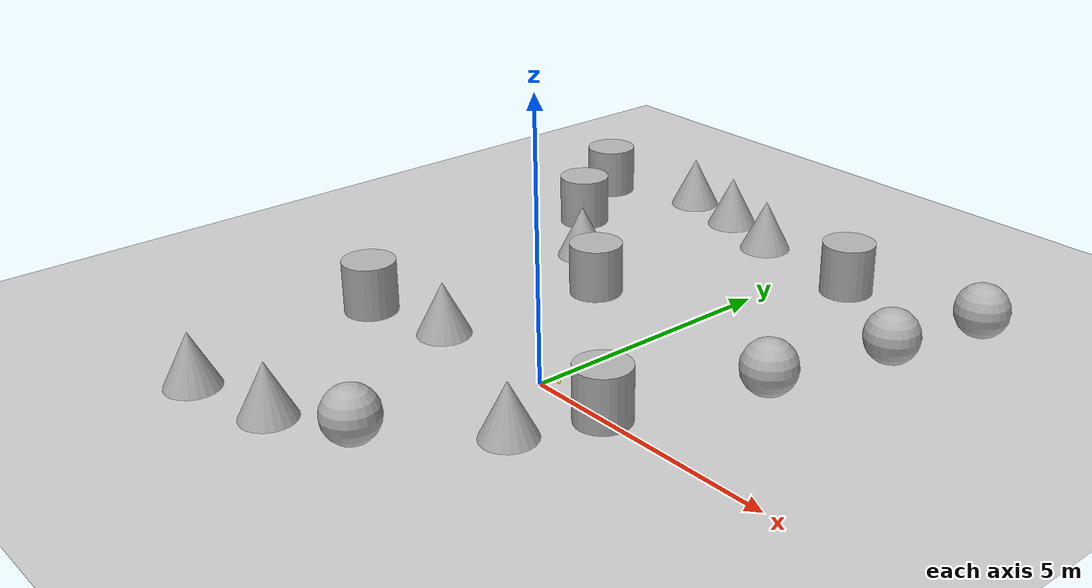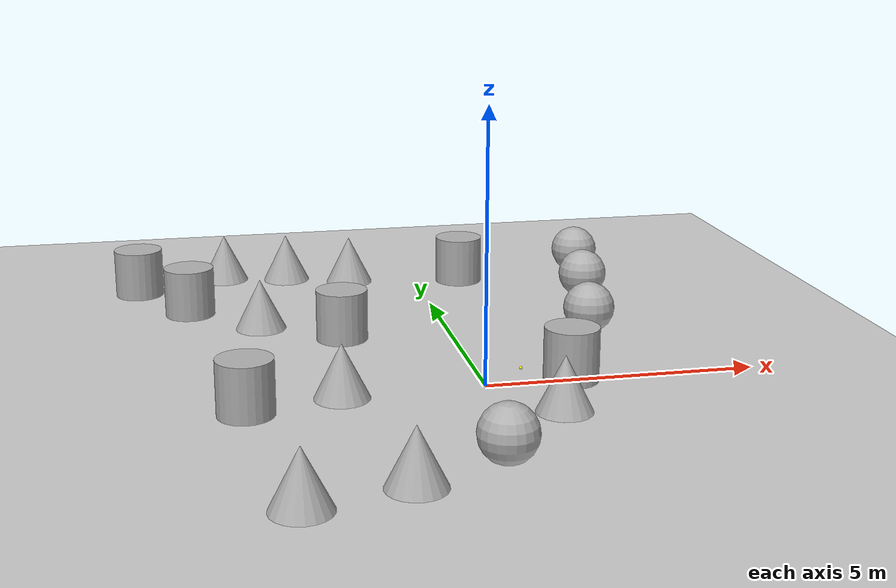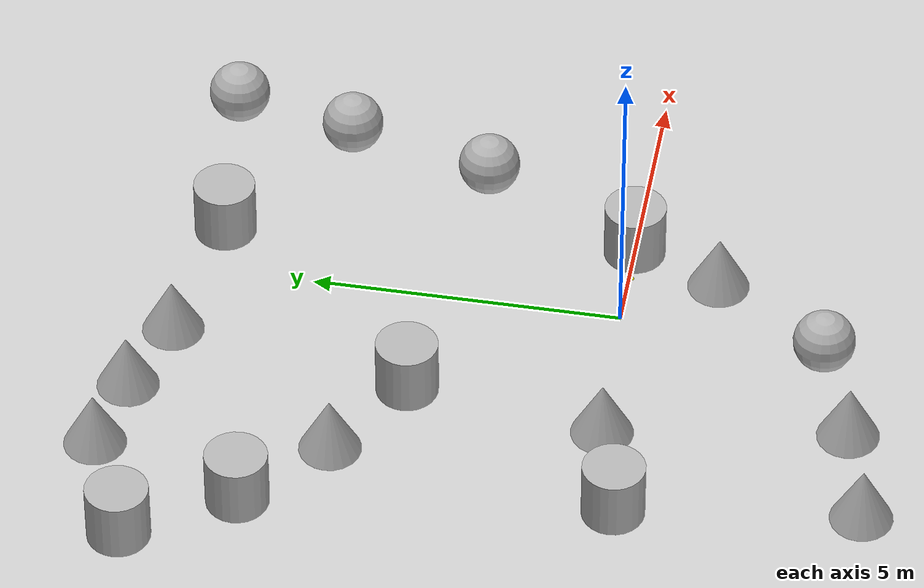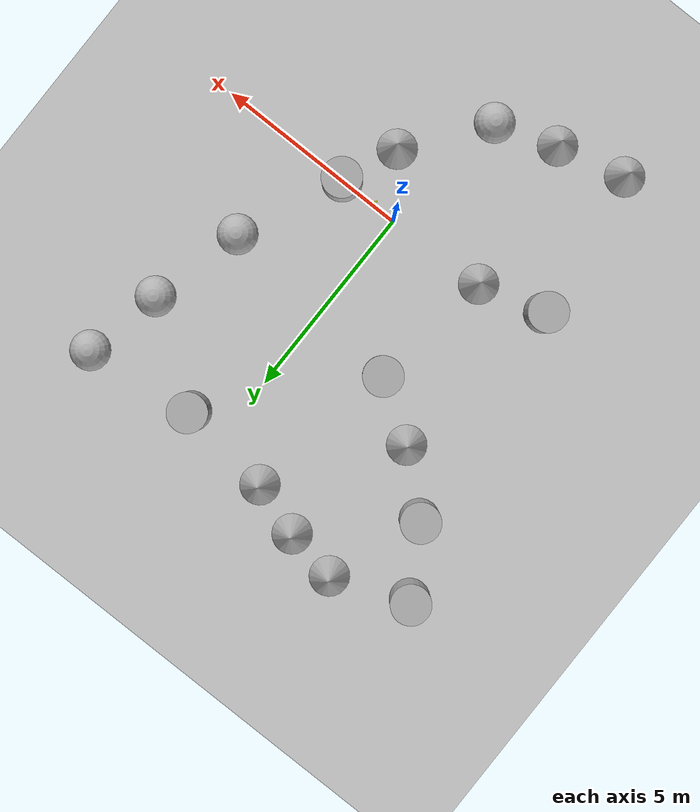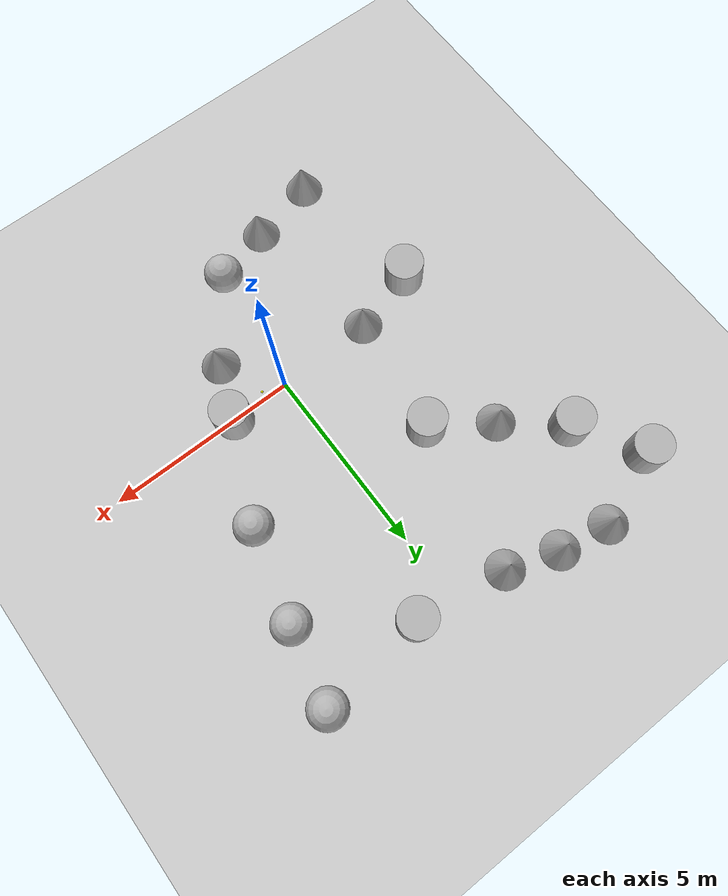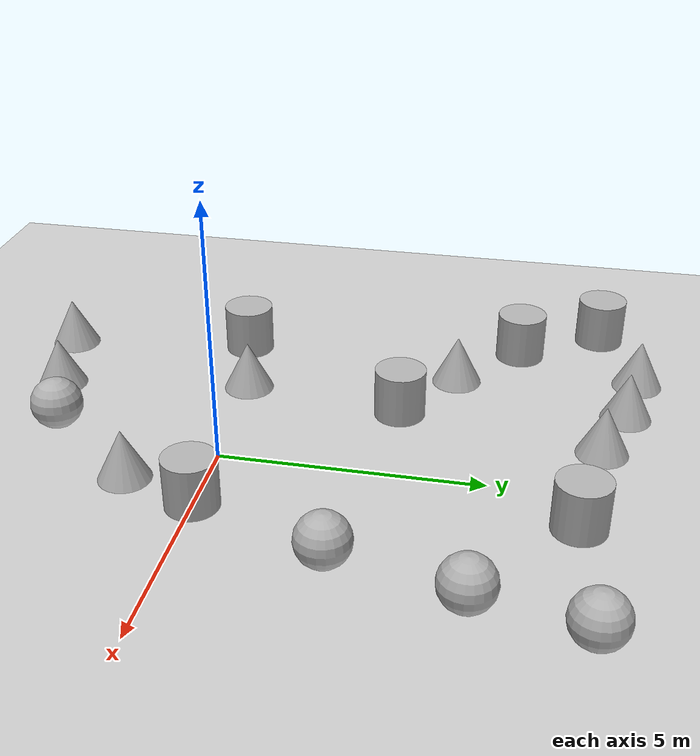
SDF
<?xml version="1.0" ?>
<sdf version='1.10'>
  <world name='vehicle_test'>
    <physics name='1ms' type='ignored'>
      <max_step_size>0.001</max_step_size>
      <real_time_factor>1</real_time_factor>
      <real_time_update_rate>1000</real_time_update_rate>
    </physics>
    <plugin name='gz::sim::systems::Physics' filename='gz-sim-physics-system'/>
    <plugin name='gz::sim::systems::Sensors' filename='gz-sim-sensors-system'>
      <render_engine>ogre2</render_engine>
    </plugin>
    <plugin name='gz::sim::systems::UserCommands' filename='gz-sim-user-commands-system'/>
    <plugin name='gz::sim::systems::SceneBroadcaster' filename='gz-sim-scene-broadcaster-system'/>
    <plugin name='gz::sim::systems::Contact' filename='gz-sim-contact-system'/>
    <gravity>0 0 -9.8000000000000007</gravity>
    <magnetic_field>5.5644999999999998e-06 2.2875799999999999e-05 -4.2388400000000002e-05</magnetic_field>
    <atmosphere type='adiabatic'/>
    <scene>
      <ambient>0.400000006 0.400000006 0.400000006 1</ambient>
      <background>0.699999988 0.699999988 0.699999988 1</background>
      <shadows>true</shadows>
    </scene>
    <gui fullscreen='false'>
      <plugin name='3D View' filename='MinimalScene'>
        <gz-gui>
          <title>3D View</title>
          <property type='bool' key='showTitleBar'>false</property>
          <property type='string' key='state'>docked</property>
        </gz-gui>
        <engine>ogre2</engine>
        <scene>scene</scene>
        <ambient_light>0.4 0.4 0.4</ambient_light>
        <background_color>0.8 0.8 0.8</background_color>
        <camera_pose>-6 0 6 0 0.5 0</camera_pose>
      </plugin>
      <plugin name='Entity context menu' filename='EntityContextMenuPlugin'>
        <gz-gui>
          <property key='state' type='string'>floating</property>
          <property key='width' type='double'>5</property>
          <property key='height' type='double'>5</property>
          <property key='showTitleBar' type='bool'>false</property>
        </gz-gui>
      </plugin>
      <plugin name='Scene Manager' filename='GzSceneManager'>
        <gz-gui>
          <property key='resizable' type='bool'>false</property>
          <property key='width' type='double'>5</property>
          <property key='height' type='double'>5</property>
          <property key='state' type='string'>floating</property>
          <property key='showTitleBar' type='bool'>false</property>
        </gz-gui>
      </plugin>
      <plugin name='Interactive view control' filename='InteractiveViewControl'>
        <gz-gui>
          <property key='resizable' type='bool'>false</property>
          <property key='width' type='double'>5</property>
          <property key='height' type='double'>5</property>
          <property key='state' type='string'>floating</property>
          <property key='showTitleBar' type='bool'>false</property>
        </gz-gui>
      </plugin>
      <plugin name='Camera Tracking' filename='CameraTracking'>
        <gz-gui>
          <property key='resizable' type='bool'>false</property>
          <property key='width' type='double'>5</property>
          <property key='height' type='double'>5</property>
          <property key='state' type='string'>floating</property>
          <property key='showTitleBar' type='bool'>false</property>
        </gz-gui>
      </plugin>
      <plugin name='World control' filename='WorldControl'>
        <gz-gui>
          <title>World control</title>
          <property type='bool' key='showTitleBar'>false</property>
          <property type='bool' key='resizable'>false</property>
          <property type='double' key='height'>72</property>
          <property type='double' key='z'>1</property>
          <property type='string' key='state'>floating</property>
          <anchors target='3D View'>
            <line own='left' target='left'/>
            <line own='bottom' target='bottom'/>
          </anchors>
        </gz-gui>
        <play_pause>true</play_pause>
        <step>true</step>
        <start_paused>true</start_paused>
        <use_event>true</use_event>
      </plugin>
      <plugin name='World stats' filename='WorldStats'>
        <gz-gui>
          <title>World stats</title>
          <property type='bool' key='showTitleBar'>false</property>
          <property type='bool' key='resizable'>false</property>
          <property type='double' key='height'>110</property>
          <property type='double' key='width'>290</property>
          <property type='double' key='z'>1</property>
          <property type='string' key='state'>floating</property>
          <anchors target='3D View'>
            <line own='right' target='right'/>
            <line own='bottom' target='bottom'/>
          </anchors>
        </gz-gui>
        <sim_time>true</sim_time>
        <real_time>true</real_time>
        <real_time_factor>true</real_time_factor>
        <iterations>true</iterations>
      </plugin>
      <plugin name='Image Display' filename='ImageDisplay'>
        <gz-gui>
          <property key='state' type='string'>docked</property>
        </gz-gui>
        <topic>camera</topic>
      </plugin>
      <plugin name='Component inspector' filename='ComponentInspector'>
        <gz-gui>
          <property type='string' key='state'>docked</property>
        </gz-gui>
      </plugin>
      <plugin name='Entity tree' filename='EntityTree'>
        <gz-gui>
          <property type='string' key='state'>docked</property>
        </gz-gui>
      </plugin>
    </gui>
    <model name='ground_plane'>
      <static>true</static>
      <link name='link'>
        <collision name='collision'>
          <geometry>
            <plane>
              <normal>0 0 1</normal>
              <size>100 100</size>
            </plane>
          </geometry>
          <surface>
            <friction>
              <ode/>
            </friction>
            <bounce/>
            <contact/>
          </surface>
        </collision>
        <visual name='visual'>
          <geometry>
            <plane>
              <normal>0 0 1</normal>
              <size>100 100</size>
            </plane>
          </geometry>
          <material>
            <ambient>0.800000012 0.800000012 0.800000012 1</ambient>
            <diffuse>0.800000012 0.800000012 0.800000012 1</diffuse>
            <specular>0.800000012 0.800000012 0.800000012 1</specular>
          </material>
        </visual>
        <pose>0 0 0 0 0 0</pose>
        <inertial>
          <pose>0 0 0 0 0 0</pose>
          <mass>1</mass>
          <inertia>
            <ixx>1</ixx>
            <ixy>0</ixy>
            <ixz>0</ixz>
            <iyy>1</iyy>
            <iyz>0</iyz>
            <izz>1</izz>
          </inertia>
        </inertial>
        <enable_wind>false</enable_wind>
      </link>
      <pose>0 0 0 0 0 0</pose>
      <self_collide>false</self_collide>
    </model>
    <model name='cylinder'>
      <pose>1.5647849126344786 0.010033067511381029 0.49999999649717192 5.9381667025697537e-12 9.1577823688234603e-09 -0.00070522680235406978</pose>
      <link name='cylinder_link'>
        <inertial>
          <inertia>
            <ixx>0.14580000000000001</ixx>
            <ixy>0</ixy>
            <ixz>0</ixz>
            <iyy>0.14580000000000001</iyy>
            <iyz>0</iyz>
            <izz>0.125</izz>
          </inertia>
          <mass>1</mass>
          <pose>0 0 0 0 0 0</pose>
        </inertial>
        <collision name='cylinder_collision'>
          <geometry>
            <cylinder>
              <radius>0.5</radius>
              <length>1</length>
            </cylinder>
          </geometry>
          <surface>
            <friction>
              <ode/>
            </friction>
            <bounce/>
            <contact/>
          </surface>
        </collision>
        <visual name='cylinder_visual'>
          <geometry>
            <cylinder>
              <radius>0.5</radius>
              <length>1</length>
            </cylinder>
          </geometry>
          <material>
            <ambient>0.300000012 0.300000012 0.300000012 1</ambient>
            <diffuse>0.699999988 0.699999988 0.699999988 1</diffuse>
            <specular>1 1 1 1</specular>
          </material>
        </visual>
        <pose>0 0 0 0 0 0</pose>
        <enable_wind>false</enable_wind>
      </link>
      <static>false</static>
      <self_collide>false</self_collide>
    </model>
    <model name='cone'>
      <pose>1.0119903619514858 -1.4393474007977078 0.49999999602630329 2.1493601424994581e-09 -8.0146362352367898e-09 4.5000509187803322e-11</pose>
      <link name='cone_link'>
        <inertial>
          <inertia>
            <ixx>0.074999999999999997</ixx>
            <ixy>0</ixy>
            <ixz>0</ixz>
            <iyy>0.074999999999999997</iyy>
            <iyz>0</iyz>
            <izz>0.074999999999999997</izz>
          </inertia>
          <mass>1</mass>
          <pose>0 0 0 0 0 0</pose>
        </inertial>
        <collision name='cone_collision'>
          <geometry>
            <cone>
              <radius>0.5</radius>
              <length>1</length>
            </cone>
          </geometry>
          <surface>
            <friction>
              <ode/>
            </friction>
            <bounce/>
            <contact/>
          </surface>
        </collision>
        <visual name='cone_visual'>
          <geometry>
            <cone>
              <radius>0.5</radius>
              <length>1</length>
            </cone>
          </geometry>
          <material>
            <ambient>0.300000012 0.300000012 0.300000012 1</ambient>
            <diffuse>0.699999988 0.699999988 0.699999988 1</diffuse>
            <specular>1 1 1 1</specular>
          </material>
        </visual>
        <pose>0 0 0 0 0 0</pose>
        <enable_wind>false</enable_wind>
      </link>
      <static>false</static>
      <self_collide>false</self_collide>
    </model>
    <model name='sphere'>
      <pose>-0.45418939601739705 -3.3253064551731351 0.4999999902000804 0 0 0</pose>
      <link name='sphere_link'>
        <inertial>
          <inertia>
            <ixx>0.10000000000000001</ixx>
            <ixy>0</ixy>
            <ixz>0</ixz>
            <iyy>0.10000000000000001</iyy>
            <iyz>0</iyz>
            <izz>0.10000000000000001</izz>
          </inertia>
          <mass>1</mass>
          <pose>0 0 0 0 0 0</pose>
        </inertial>
        <collision name='sphere_collision'>
          <geometry>
            <sphere>
              <radius>0.5</radius>
            </sphere>
          </geometry>
          <surface>
            <friction>
              <ode/>
            </friction>
            <bounce/>
            <contact/>
          </surface>
        </collision>
        <visual name='sphere_visual'>
          <geometry>
            <sphere>
              <radius>0.5</radius>
            </sphere>
          </geometry>
          <material>
            <ambient>0.300000012 0.300000012 0.300000012 1</ambient>
            <diffuse>0.699999988 0.699999988 0.699999988 1</diffuse>
            <specular>1 1 1 1</specular>
          </material>
        </visual>
        <pose>0 0 0 0 0 0</pose>
        <enable_wind>false</enable_wind>
      </link>
      <static>false</static>
      <self_collide>false</self_collide>
    </model>
    <model name='cone_1'>
      <pose>-1.988375017338802 -3.9166268384729577 0.49999999602630368 2.1500274312625702e-09 -8.0144496998657247e-09 -0.0034618920921257288</pose>
      <link name='cone_link'>
        <inertial>
          <inertia>
            <ixx>0.074999999999999997</ixx>
            <ixy>0</ixy>
            <ixz>0</ixz>
            <iyy>0.074999999999999997</iyy>
            <iyz>0</iyz>
            <izz>0.074999999999999997</izz>
          </inertia>
          <mass>1</mass>
          <pose>0 0 0 0 0 0</pose>
        </inertial>
        <collision name='cone_collision'>
          <geometry>
            <cone>
              <radius>0.5</radius>
              <length>1</length>
            </cone>
          </geometry>
          <surface>
            <friction>
              <ode/>
            </friction>
            <bounce/>
            <contact/>
          </surface>
        </collision>
        <visual name='cone_visual'>
          <geometry>
            <cone>
              <radius>0.5</radius>
              <length>1</length>
            </cone>
          </geometry>
          <material>
            <ambient>0.300000012 0.300000012 0.300000012 1</ambient>
            <diffuse>0.699999988 0.699999988 0.699999988 1</diffuse>
            <specular>1 1 1 1</specular>
          </material>
        </visual>
        <pose>0 0 0 0 0 0</pose>
        <enable_wind>false</enable_wind>
      </link>
      <static>false</static>
      <self_collide>false</self_collide>
    </model>
    <model name='cone_2'>
      <pose>-3.7284737703007584 -4.3418635757443802 0.49999999602630407 2.1483973425995266e-09 -8.0148849395923472e-09 -0.0013240904002517111</pose>
      <link name='cone_link'>
        <inertial>
          <inertia>
            <ixx>0.074999999999999997</ixx>
            <ixy>0</ixy>
            <ixz>0</ixz>
            <iyy>0.074999999999999997</iyy>
            <iyz>0</iyz>
            <izz>0.074999999999999997</izz>
          </inertia>
          <mass>1</mass>
          <pose>0 0 0 0 0 0</pose>
        </inertial>
        <collision name='cone_collision'>
          <geometry>
            <cone>
              <radius>0.5</radius>
              <length>1</length>
            </cone>
          </geometry>
          <surface>
            <friction>
              <ode/>
            </friction>
            <bounce/>
            <contact/>
          </surface>
        </collision>
        <visual name='cone_visual'>
          <geometry>
            <cone>
              <radius>0.5</radius>
              <length>1</length>
            </cone>
          </geometry>
          <material>
            <ambient>0.300000012 0.300000012 0.300000012 1</ambient>
            <diffuse>0.699999988 0.699999988 0.699999988 1</diffuse>
            <specular>1 1 1 1</specular>
          </material>
        </visual>
        <pose>0 0 0 0 0 0</pose>
        <enable_wind>false</enable_wind>
      </link>
      <static>false</static>
      <self_collide>false</self_collide>
    </model>
    <model name='cone_3'>
      <pose>-2.5694164658559759 -0.10154381302845478 0.49999999602630452 2.1467172264714498e-09 -8.0155572575030732e-09 0.00088641058045062053</pose>
      <link name='cone_link'>
        <inertial>
          <inertia>
            <ixx>0.074999999999999997</ixx>
            <ixy>0</ixy>
            <ixz>0</ixz>
            <iyy>0.074999999999999997</iyy>
            <iyz>0</iyz>
            <izz>0.074999999999999997</izz>
          </inertia>
          <mass>1</mass>
          <pose>0 0 0 0 0 0</pose>
        </inertial>
        <collision name='cone_collision'>
          <geometry>
            <cone>
              <radius>0.5</radius>
              <length>1</length>
            </cone>
          </geometry>
          <surface>
            <friction>
              <ode/>
            </friction>
            <bounce/>
            <contact/>
          </surface>
        </collision>
        <visual name='cone_visual'>
          <geometry>
            <cone>
              <radius>0.5</radius>
              <length>1</length>
            </cone>
          </geometry>
          <material>
            <ambient>0.300000012 0.300000012 0.300000012 1</ambient>
            <diffuse>0.699999988 0.699999988 0.699999988 1</diffuse>
            <specular>1 1 1 1</specular>
          </material>
        </visual>
        <pose>0 0 0 0 0 0</pose>
        <enable_wind>false</enable_wind>
      </link>
      <static>false</static>
      <self_collide>false</self_collide>
    </model>
    <model name='cylinder_1'>
      <pose>-4.2439677537580769 -0.53501031806031363 0.49999999648908316 1.7135334651035905e-15 -9.127089172392033e-09 -0.00070535090265206853</pose>
      <link name='cylinder_link'>
        <inertial>
          <inertia>
            <ixx>0.14580000000000001</ixx>
            <ixy>0</ixy>
            <ixz>0</ixz>
            <iyy>0.14580000000000001</iyy>
            <iyz>0</iyz>
            <izz>0.125</izz>
          </inertia>
          <mass>1</mass>
          <pose>0 0 0 0 0 0</pose>
        </inertial>
        <collision name='cylinder_collision'>
          <geometry>
            <cylinder>
              <radius>0.5</radius>
              <length>1</length>
            </cylinder>
          </geometry>
          <surface>
            <friction>
              <ode/>
            </friction>
            <bounce/>
            <contact/>
          </surface>
        </collision>
        <visual name='cylinder_visual'>
          <geometry>
            <cylinder>
              <radius>0.5</radius>
              <length>1</length>
            </cylinder>
          </geometry>
          <material>
            <ambient>0.300000012 0.300000012 0.300000012 1</ambient>
            <diffuse>0.699999988 0.699999988 0.699999988 1</diffuse>
            <specular>1 1 1 1</specular>
          </material>
        </visual>
        <pose>0 0 0 0 0 0</pose>
        <enable_wind>false</enable_wind>
      </link>
      <static>false</static>
      <self_collide>false</self_collide>
    </model>
    <model name='cylinder_2'>
      <pose>-2.1317149029079245 3.0851914661362034 0.49999999649507043 -5.8317321045864942e-12 9.1513755900911366e-09 -0.00070530305555241337</pose>
      <link name='cylinder_link'>
        <inertial>
          <inertia>
            <ixx>0.14580000000000001</ixx>
            <ixy>0</ixy>
            <ixz>0</ixz>
            <iyy>0.14580000000000001</iyy>
            <iyz>0</iyz>
            <izz>0.125</izz>
          </inertia>
          <mass>1</mass>
          <pose>0 0 0 0 0 0</pose>
        </inertial>
        <collision name='cylinder_collision'>
          <geometry>
            <cylinder>
              <radius>0.5</radius>
              <length>1</length>
            </cylinder>
          </geometry>
          <surface>
            <friction>
              <ode/>
            </friction>
            <bounce/>
            <contact/>
          </surface>
        </collision>
        <visual name='cylinder_visual'>
          <geometry>
            <cylinder>
              <radius>0.5</radius>
              <length>1</length>
            </cylinder>
          </geometry>
          <material>
            <ambient>0.300000012 0.300000012 0.300000012 1</ambient>
            <diffuse>0.699999988 0.699999988 0.699999988 1</diffuse>
            <specular>1 1 1 1</specular>
          </material>
        </visual>
        <pose>0 0 0 0 0 0</pose>
        <enable_wind>false</enable_wind>
      </link>
      <static>false</static>
      <self_collide>false</self_collide>
    </model>
    <model name='cylinder_3'>
      <pose>0.96806473023880468 6.6413887162873593 0.49999999649534738 5.8193169326481286e-12 9.15263263118701e-09 -0.00070537233793986111</pose>
      <link name='cylinder_link'>
        <inertial>
          <inertia>
            <ixx>0.14580000000000001</ixx>
            <ixy>0</ixy>
            <ixz>0</ixz>
            <iyy>0.14580000000000001</iyy>
            <iyz>0</iyz>
            <izz>0.125</izz>
          </inertia>
          <mass>1</mass>
          <pose>0 0 0 0 0 0</pose>
        </inertial>
        <collision name='cylinder_collision'>
          <geometry>
            <cylinder>
              <radius>0.5</radius>
              <length>1</length>
            </cylinder>
          </geometry>
          <surface>
            <friction>
              <ode/>
            </friction>
            <bounce/>
            <contact/>
          </surface>
        </collision>
        <visual name='cylinder_visual'>
          <geometry>
            <cylinder>
              <radius>0.5</radius>
              <length>1</length>
            </cylinder>
          </geometry>
          <material>
            <ambient>0.300000012 0.300000012 0.300000012 1</ambient>
            <diffuse>0.699999988 0.699999988 0.699999988 1</diffuse>
            <specular>1 1 1 1</specular>
          </material>
        </visual>
        <pose>0 0 0 0 0 0</pose>
        <enable_wind>false</enable_wind>
      </link>
      <static>false</static>
      <self_collide>false</self_collide>
    </model>
    <model name='sphere_1'>
      <pose>2.7082596078731678 2.5902424265151147 0.4999999902000804 0 0 0</pose>
      <link name='sphere_link'>
        <inertial>
          <inertia>
            <ixx>0.10000000000000001</ixx>
            <ixy>0</ixy>
            <ixz>0</ixz>
            <iyy>0.10000000000000001</iyy>
            <iyz>0</iyz>
            <izz>0.10000000000000001</izz>
          </inertia>
          <mass>1</mass>
          <pose>0 0 0 0 0 0</pose>
        </inertial>
        <collision name='sphere_collision'>
          <geometry>
            <sphere>
              <radius>0.5</radius>
            </sphere>
          </geometry>
          <surface>
            <friction>
              <ode/>
            </friction>
            <bounce/>
            <contact/>
          </surface>
        </collision>
        <visual name='sphere_visual'>
          <geometry>
            <sphere>
              <radius>0.5</radius>
            </sphere>
          </geometry>
          <material>
            <ambient>0.300000012 0.300000012 0.300000012 1</ambient>
            <diffuse>0.699999988 0.699999988 0.699999988 1</diffuse>
            <specular>1 1 1 1</specular>
          </material>
        </visual>
        <pose>0 0 0 0 0 0</pose>
        <enable_wind>false</enable_wind>
      </link>
      <static>false</static>
      <self_collide>false</self_collide>
    </model>
    <model name='sphere_2'>
      <pose>3.3215863858737693 4.9727112815431731 0.4999999902000804 0 0 0</pose>
      <link name='sphere_link'>
        <inertial>
          <inertia>
            <ixx>0.10000000000000001</ixx>
            <ixy>0</ixy>
            <ixz>0</ixz>
            <iyy>0.10000000000000001</iyy>
            <iyz>0</iyz>
            <izz>0.10000000000000001</izz>
          </inertia>
          <mass>1</mass>
          <pose>0 0 0 0 0 0</pose>
        </inertial>
        <collision name='sphere_collision'>
          <geometry>
            <sphere>
              <radius>0.5</radius>
            </sphere>
          </geometry>
          <surface>
            <friction>
              <ode/>
            </friction>
            <bounce/>
            <contact/>
          </surface>
        </collision>
        <visual name='sphere_visual'>
          <geometry>
            <sphere>
              <radius>0.5</radius>
            </sphere>
          </geometry>
          <material>
            <ambient>0.300000012 0.300000012 0.300000012 1</ambient>
            <diffuse>0.699999988 0.699999988 0.699999988 1</diffuse>
            <specular>1 1 1 1</specular>
          </material>
        </visual>
        <pose>0 0 0 0 0 0</pose>
        <enable_wind>false</enable_wind>
      </link>
      <static>false</static>
      <self_collide>false</self_collide>
    </model>
    <model name='sphere_3'>
      <pose>3.7421691184746653 6.9550475964609415 0.4999999902000804 0 0 0</pose>
      <link name='sphere_link'>
        <inertial>
          <inertia>
            <ixx>0.10000000000000001</ixx>
            <ixy>0</ixy>
            <ixz>0</ixz>
            <iyy>0.10000000000000001</iyy>
            <iyz>0</iyz>
            <izz>0.10000000000000001</izz>
          </inertia>
          <mass>1</mass>
          <pose>0 0 0 0 0 0</pose>
        </inertial>
        <collision name='sphere_collision'>
          <geometry>
            <sphere>
              <radius>0.5</radius>
            </sphere>
          </geometry>
          <surface>
            <friction>
              <ode/>
            </friction>
            <bounce/>
            <contact/>
          </surface>
        </collision>
        <visual name='sphere_visual'>
          <geometry>
            <sphere>
              <radius>0.5</radius>
            </sphere>
          </geometry>
          <material>
            <ambient>0.300000012 0.300000012 0.300000012 1</ambient>
            <diffuse>0.699999988 0.699999988 0.699999988 1</diffuse>
            <specular>1 1 1 1</specular>
          </material>
        </visual>
        <pose>0 0 0 0 0 0</pose>
        <enable_wind>false</enable_wind>
      </link>
      <static>false</static>
      <self_collide>false</self_collide>
    </model>
    <model name='sphere_4'>
      <pose>0.60715463078866849 -0.094098807829449724 0.329999990200053658 0.10555307715220283 -0.20630498479303572 -0.013487350172564973</pose>
      <link name='sphere_link'>
        <inertial>
          <inertia>
            <ixx>0.10000000000000001</ixx>
            <ixy>0</ixy>
            <ixz>0</ixz>
            <iyy>0.10000000000000001</iyy>
            <iyz>0</iyz>
            <izz>0.10000000000000001</izz>
          </inertia>
          <mass>1</mass>
          <pose>0 0 0 0 0 0</pose>
        </inertial>
        <collision name='sphere_collision'>
          <geometry>
            <sphere>
              <radius>0.029999999999999999</radius>
            </sphere>
          </geometry>
          <surface>
            <friction>
              <ode/>
            </friction>
            <bounce/>
            <contact/>
          </surface>
        </collision>
        <visual name='sphere_visual'>
          <geometry>
            <sphere>
              <radius>0.029999999999999999</radius>
            </sphere>
          </geometry>
          <material>
            <ambient>0.300000012 0.300000012 0.300000012 1</ambient>
            <diffuse>1 1 0 1</diffuse>
            <specular>1 1 1 1</specular>
          </material>
        </visual>
        <pose>0 0 0 0 0 0</pose>
        <enable_wind>false</enable_wind>
      </link>
      <static>false</static>
      <self_collide>false</self_collide>
    </model>
    <model name='cone_3_1'>
      <pose>-1.4401303132483814 7.007866483953598 0.49999999602630418 2.1468900940155516e-09 -8.0153254218039371e-09 0.00031219418860574166</pose>
      <link name='cone_link'>
        <inertial>
          <inertia>
            <ixx>0.074999999999999997</ixx>
            <ixy>0</ixy>
            <ixz>0</ixz>
            <iyy>0.074999999999999997</iyy>
            <iyz>0</iyz>
            <izz>0.074999999999999997</izz>
          </inertia>
          <mass>1</mass>
          <pose>0 0 0 0 0 0</pose>
        </inertial>
        <collision name='cone_collision'>
          <geometry>
            <cone>
              <radius>0.5</radius>
              <length>1</length>
            </cone>
          </geometry>
          <surface>
            <friction>
              <ode/>
            </friction>
            <bounce/>
            <contact/>
          </surface>
        </collision>
        <visual name='cone_visual'>
          <geometry>
            <cone>
              <radius>0.5</radius>
              <length>1</length>
            </cone>
          </geometry>
          <material>
            <ambient>0.300000012 0.300000012 0.300000012 1</ambient>
            <diffuse>0.699999988 0.699999988 0.699999988 1</diffuse>
            <specular>1 1 1 1</specular>
          </material>
        </visual>
        <pose>0 0 0 0 0 0</pose>
        <enable_wind>false</enable_wind>
      </link>
      <static>false</static>
      <self_collide>false</self_collide>
    </model>
    <model name='cone_3_2'>
      <pose>-2.7926869885776111 7.4541257995898507 0.49999999602630391 2.1486691747856613e-09 -8.015035174364656e-09 0.00081907747166532678</pose>
      <link name='cone_link'>
        <inertial>
          <inertia>
            <ixx>0.074999999999999997</ixx>
            <ixy>0</ixy>
            <ixz>0</ixz>
            <iyy>0.074999999999999997</iyy>
            <iyz>0</iyz>
            <izz>0.074999999999999997</izz>
          </inertia>
          <mass>1</mass>
          <pose>0 0 0 0 0 0</pose>
        </inertial>
        <collision name='cone_collision'>
          <geometry>
            <cone>
              <radius>0.5</radius>
              <length>1</length>
            </cone>
          </geometry>
          <surface>
            <friction>
              <ode/>
            </friction>
            <bounce/>
            <contact/>
          </surface>
        </collision>
        <visual name='cone_visual'>
          <geometry>
            <cone>
              <radius>0.5</radius>
              <length>1</length>
            </cone>
          </geometry>
          <material>
            <ambient>0.300000012 0.300000012 0.300000012 1</ambient>
            <diffuse>0.699999988 0.699999988 0.699999988 1</diffuse>
            <specular>1 1 1 1</specular>
          </material>
        </visual>
        <pose>0 0 0 0 0 0</pose>
        <enable_wind>false</enable_wind>
      </link>
      <static>false</static>
      <self_collide>false</self_collide>
    </model>
    <model name='cone_3_3'>
      <pose>-4.1351438439597041 7.6933208616523077 0.49999999602630379 2.147903151917119e-09 -8.0150188604923852e-09 -0.0031196040527217256</pose>
      <link name='cone_link'>
        <inertial>
          <inertia>
            <ixx>0.074999999999999997</ixx>
            <ixy>0</ixy>
            <ixz>0</ixz>
            <iyy>0.074999999999999997</iyy>
            <iyz>0</iyz>
            <izz>0.074999999999999997</izz>
          </inertia>
          <mass>1</mass>
          <pose>0 0 0 0 0 0</pose>
        </inertial>
        <collision name='cone_collision'>
          <geometry>
            <cone>
              <radius>0.5</radius>
              <length>1</length>
            </cone>
          </geometry>
          <surface>
            <friction>
              <ode/>
            </friction>
            <bounce/>
            <contact/>
          </surface>
        </collision>
        <visual name='cone_visual'>
          <geometry>
            <cone>
              <radius>0.5</radius>
              <length>1</length>
            </cone>
          </geometry>
          <material>
            <ambient>0.300000012 0.300000012 0.300000012 1</ambient>
            <diffuse>0.699999988 0.699999988 0.699999988 1</diffuse>
            <specular>1 1 1 1</specular>
          </material>
        </visual>
        <pose>0 0 0 0 0 0</pose>
        <enable_wind>false</enable_wind>
      </link>
      <static>false</static>
      <self_collide>false</self_collide>
    </model>
    <model name='cone_3_4'>
      <pose>-3.6296300674955391 4.0415350691854215 0.49999999602630363 2.1477317620985162e-09 -8.0150647543603611e-09 -0.0031233399415353013</pose>
      <link name='cone_link'>
        <inertial>
          <inertia>
            <ixx>0.074999999999999997</ixx>
            <ixy>0</ixy>
            <ixz>0</ixz>
            <iyy>0.074999999999999997</iyy>
            <iyz>0</iyz>
            <izz>0.074999999999999997</izz>
          </inertia>
          <mass>1</mass>
          <pose>0 0 0 0 0 0</pose>
        </inertial>
        <collision name='cone_collision'>
          <geometry>
            <cone>
              <radius>0.5</radius>
              <length>1</length>
            </cone>
          </geometry>
          <surface>
            <friction>
              <ode/>
            </friction>
            <bounce/>
            <contact/>
          </surface>
        </collision>
        <visual name='cone_visual'>
          <geometry>
            <cone>
              <radius>0.5</radius>
              <length>1</length>
            </cone>
          </geometry>
          <material>
            <ambient>0.300000012 0.300000012 0.300000012 1</ambient>
            <diffuse>0.699999988 0.699999988 0.699999988 1</diffuse>
            <specular>1 1 1 1</specular>
          </material>
        </visual>
        <pose>0 0 0 0 0 0</pose>
        <enable_wind>false</enable_wind>
      </link>
      <static>false</static>
      <self_collide>false</self_collide>
    </model>
    <model name='cylinder_1_1'>
      <pose>-4.9808434957323424 5.247911443215151 0.49999999631413722 2.5948263398239628e-09 6.2799307350620107e-09 -0.00070513848452224536</pose>
      <link name='cylinder_link'>
        <inertial>
          <inertia>
            <ixx>0.14580000000000001</ixx>
            <ixy>0</ixy>
            <ixz>0</ixz>
            <iyy>0.14580000000000001</iyy>
            <iyz>0</iyz>
            <izz>0.125</izz>
          </inertia>
          <mass>1</mass>
          <pose>0 0 0 0 0 0</pose>
        </inertial>
        <collision name='cylinder_collision'>
          <geometry>
            <cylinder>
              <radius>0.5</radius>
              <length>1</length>
            </cylinder>
          </geometry>
          <surface>
            <friction>
              <ode/>
            </friction>
            <bounce/>
            <contact/>
          </surface>
        </collision>
        <visual name='cylinder_visual'>
          <geometry>
            <cylinder>
              <radius>0.5</radius>
              <length>1</length>
            </cylinder>
          </geometry>
          <material>
            <ambient>0.300000012 0.300000012 0.300000012 1</ambient>
            <diffuse>0.699999988 0.699999988 0.699999988 1</diffuse>
            <specular>1 1 1 1</specular>
          </material>
        </visual>
        <pose>0 0 0 0 0 0</pose>
        <enable_wind>false</enable_wind>
      </link>
      <static>false</static>
      <self_collide>false</self_collide>
    </model>
    <model name='cylinder_1_2'>
      <pose>-5.9999065051342244 6.908817642186917 0.49999999631413722 2.5933409909675421e-09 6.2652993668334717e-09 -0.00070534223464685758</pose>
      <link name='cylinder_link'>
        <inertial>
          <inertia>
            <ixx>0.14580000000000001</ixx>
            <ixy>0</ixy>
            <ixz>0</ixz>
            <iyy>0.14580000000000001</iyy>
            <iyz>0</iyz>
            <izz>0.125</izz>
          </inertia>
          <mass>1</mass>
          <pose>0 0 0 0 0 0</pose>
        </inertial>
        <collision name='cylinder_collision'>
          <geometry>
            <cylinder>
              <radius>0.5</radius>
              <length>1</length>
            </cylinder>
          </geometry>
          <surface>
            <friction>
              <ode/>
            </friction>
            <bounce/>
            <contact/>
          </surface>
        </collision>
        <visual name='cylinder_visual'>
          <geometry>
            <cylinder>
              <radius>0.5</radius>
              <length>1</length>
            </cylinder>
          </geometry>
          <material>
            <ambient>0.300000012 0.300000012 0.300000012 1</ambient>
            <diffuse>0.699999988 0.699999988 0.699999988 1</diffuse>
            <specular>1 1 1 1</specular>
          </material>
        </visual>
        <pose>0 0 0 0 0 0</pose>
        <enable_wind>false</enable_wind>
      </link>
      <static>false</static>
      <self_collide>false</self_collide>
    </model>
    <light name='sun' type='directional'>
      <pose>0 0 10 0 0 0</pose>
      <cast_shadows>true</cast_shadows>
      <intensity>1</intensity>
      <direction>-0.5 0.10000000000000001 -0.90000000000000002</direction>
      <diffuse>0.800000012 0.800000012 0.800000012 1</diffuse>
      <specular>0.200000003 0.200000003 0.200000003 1</specular>
      <attenuation>
        <range>1000</range>
        <linear>0.01</linear>
        <constant>0.90000000000000002</constant>
        <quadratic>0.001</quadratic>
      </attenuation>
      <spot>
        <inner_angle>0</inner_angle>
        <outer_angle>0</outer_angle>
        <falloff>0</falloff>
      </spot>
    </light>
  </world>
</sdf>
